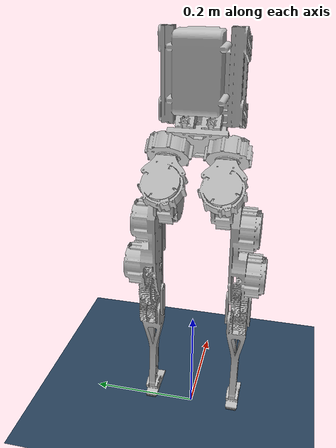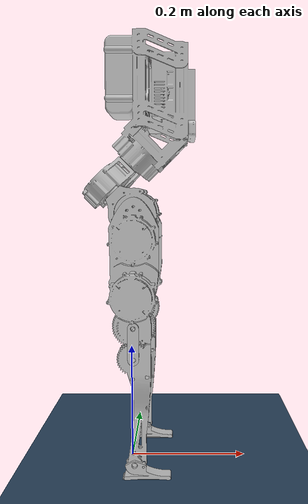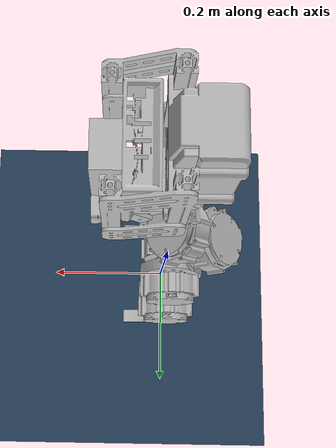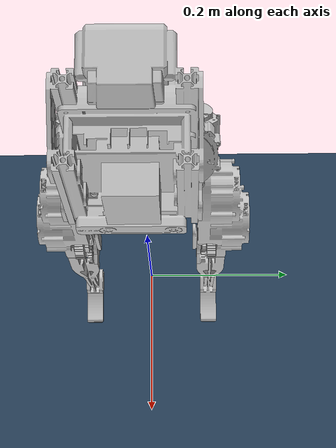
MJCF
<mujoco model="hector mini scene">
  <include file="hector_mini_biped_v2.xml"/>

  <statistic center="0 0 0.25" extent="1"/>

  <visual>
    <headlight diffuse="0.6 0.6 0.6" ambient="0.3 0.3 0.3" specular="0 0 0"/>
    <rgba haze="0.15 0.25 0.35 1"/>
    <global azimuth="-130" elevation="-20"/>
  </visual>

  <asset>
    <texture type="skybox" builtin="gradient" rgb1="0.3 0.5 0.7" rgb2="0 0 0" width="512" height="3072"/>
    <texture type="2d" name="groundplane" builtin="checker" mark="edge" rgb1="0.2 0.3 0.4" rgb2="0.1 0.2 0.3"
      markrgb="0.8 0.8 0.8" width="300" height="300"/>
    <material name="groundplane" texture="groundplane" texuniform="true" texrepeat="5 5" reflectance="0.2"/>
  </asset>

  <worldbody>
    <light pos="0 0 1.5" dir="0 0 -1" directional="true"/>
    <geom name="floor" size="0 0 0.05" type="plane" material="groundplane"/>
  </worldbody>
</mujoco>

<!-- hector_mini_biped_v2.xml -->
<mujoco model="hector_mini">
  <compiler angle="radian" meshdir="meshes/"/>

  <option timestep='0.001' o_solref='-100000 -1000' >
		<flag override='enable' />
	</option>

  <asset>
    <mesh name="body" file="body2.stl"/>
    <mesh name="left_hip1" file="hip_short_1.stl"/>
    <mesh name="right_hip1" file="hip_short_1.stl"/>
    <mesh name="left_hip2" file="hip_short_2_l.stl"/>
    <mesh name="right_hip2" file="hip_short_2_r.stl"/>
    <mesh name="left_thigh" file="thigh_l.stl"/>
    <mesh name="right_thigh" file="thigh_r.stl"/>
    <mesh name="left_bracket" file="bracket1.stl"/>
    <mesh name="right_bracket" file="bracket1.stl"/>
    <mesh name="left_calf" file="calf_l.stl"/>
    <mesh name="right_calf" file="calf_r.stl"/>
    <mesh name="left_foot" file="foot1.stl"/>
    <mesh name="right_foot" file="foot1.stl"/>
    <material name="metal_silver" rgba="0.75 0.75 0.75 1" specular="0.6" shininess="1"/>
  </asset>

  <default>
    <default class="torso_motor">
      <joint damping="0.01" armature="0.01" frictionloss="0.01"/>
    </default>
    <default class="leg_motor">
      <joint damping="0.01" armature="0.01" frictionloss="0.1"/>
    </default>
    <default class="ankle_motor">
      <joint damping="0.01" armature="0.01" frictionloss="0.1"/>
    </default>
    <default class="arm_motor">
      <joint damping="0.01" armature="0.01" frictionloss="0.1"/>
    </default>
    <default class="wrist_motor">
      <joint damping="0.01" armature="0.01" frictionloss="0.1"/>
    </default>
  </default>

  <worldbody>
    <body name="body" pos="0 0 0.64">
      <inertial pos="0.031602 0.0 -0.022894" quat="1 0 0 0" mass="1.8" diaginertia="0.008616 0.009058 0.005317"/>
      <joint name="floating_base_joint" type="free" limited="false" actuatorfrclimited="false"/>
      <geom type="mesh" contype="0" conaffinity="0" group="1" density="0" rgba="0.752941 0.752941 0.752941 1" mesh="body"/>
         <site name="imu" size="0.01" pos="-0.0 -0.0 0.0" />
      <body name="left_hip1" pos="0 0.05 -0.125" quat="0.9238795 0 0.3826834 0">
        <inertial pos="-0.0107 0 -0.0455" quat="1 0 0 0" mass="0.385" diaginertia="0.00023228 0.00017208 0.00012534"/>
        <joint name="left_hip_yaw_joint" pos="0 0 0" axis="0 0 1" damping="0.0" range="-1.57 1.57" actuatorfrcrange="-17 17" class="leg_motor"/>
        <geom type="mesh" contype="0" conaffinity="0" group="1" density="0" material="metal_silver" mesh="left_hip1"/>
        <body name="left_hip2" pos="0.0155 0 -0.04875" quat="1 0 0 0">
          <inertial pos="0.0455 -0.0107 0" quat="1 0 0 0" mass="0.385" diaginertia="0.00012534 0.00023228 0.00017208"/>
          <joint name="left_hip_roll_joint" pos="0 0 0" axis="1 0 0" damping="0.0" range="-1 1" actuatorfrcrange="-17 17" class="leg_motor"/>
          <geom type="mesh" contype="0" conaffinity="0" group="1" density="0" material="metal_silver" mesh="left_hip2"/>
          <body name="left_hip_pitch_joint" pos="0.04875 0.0155 0" quat="0.9238795 0 -0.3826834 0">
            <inertial pos="0.0001 0.03687 -0.09013" quat="1 0 0 0" mass="0.9856" diaginertia="0.003092 0.003075 0.00060"/>
            <joint name="left_hip_pitch_joint" pos="0 0 0" axis="0 1 0" damping="0.0" range="-1 2.57" actuatorfrcrange="-17 17" class="leg_motor"/>
            <geom type="mesh" contype="0" conaffinity="0" group="1" density="0" material="metal_silver" mesh="left_thigh"/>
            <body name="left_bracket_link" pos="0 0.0175 -0.18">
              <inertial pos="0 0 -0.0255" quat="1 0 0 0" mass="0.020" diaginertia="0.00000719 0.00000323 0.00000450"/>
              <joint name="left_knee_joint" pos="0 0 0" axis="0 1 0" damping="0.0" range="0.1 1.57" actuatorfrcrange="-17 17" class="leg_motor"/>
              <geom type="mesh" contype="0" conaffinity="0" group="1" density="0" material="metal_silver" mesh="left_bracket"/>
              <body name="left_calf_link" pos="0 0 -0.051">
                <inertial pos="0.005608 0.001267 -0.04554" quat="1 0 0 0" mass="0.1464" diaginertia="0.00047 0.000476 0.000035"/>
                <joint name="left_calf_joint" pos="0 0 0" axis="0 1 0" damping="0.0" range="0.1 1.57" actuatorfrcrange="-17 17" class="leg_motor"/>
                <geom type="mesh" contype="0" conaffinity="0" group="1" density="0" material="metal_silver" mesh="left_calf"/>
                <body name="left_ankle_link" pos="0 0 -0.18">
                  <inertial pos="0.0154 0 -0.0154" quat="1 0 0 0" mass="0.026" diaginertia="0.00000274 0.0000111 0.00001109"/>
                  <joint name="left_ankle_joint" pos="0 0 0" axis="0 1 0" damping="0.0" range="-2 2" actuatorfrcrange="-17 17" class="ankle_motor"/>
                  <geom type="mesh" material="metal_silver" mesh="left_foot"/>
                  <geom type="box" size="0.04 0.01 0.001" pos="0.02 0 -0.024" condim="4"
                  friction="2 0.005 0.0001" solref="-5e-4 -0.02" solimp="0.9 0.95 0.001 0.5 2"/>
                </body>
              </body>
            </body>
          </body>
        </body>
      </body>
      <body name="right_hip1" pos="0 -0.05 -0.125" quat="0.9238795 0 0.3826834 0">
        <inertial pos="-0.0107 0 -0.0455" quat="1 0 0 0" mass="0.385" diaginertia="0.00023228 0.00017208 0.00012534"/>
        <joint name="right_hip_yaw_joint" pos="0 0 0" axis="0 0 1" damping="0.0" range="-1.57 1.57" actuatorfrcrange="-17 17" class="leg_motor"/>
        <geom type="mesh" contype="0" conaffinity="0" group="1" density="0" material="metal_silver" mesh="right_hip1"/>
        <body name="right_hip2" pos="0.0155 0 -0.04875" quat="1 0 0 0">
          <inertial pos="0.0455 0.0107 0" quat="1 0 0 0" mass="0.385" diaginertia="0.00012534 0.00023228 0.00017208"/>
          <joint name="right_hip_roll_joint" pos="0 0 0" axis="1 0 0" damping="0.0" range="-1 1" actuatorfrcrange="-17 17" class="leg_motor"/>
          <geom type="mesh" contype="0" conaffinity="0" group="1" density="0" material="metal_silver" mesh="right_hip2"/>
          <body name="right_hip_pitch_joint" pos="0.04875 -0.0155 0" quat="0.9238795 0 -0.3826834 0">
            <inertial pos="0.0001 -0.03687 -0.09013" quat="1 0 0 0" mass="0.9856" diaginertia="0.003092 0.003075 0.00060"/>
            <joint name="right_hip_pitch_joint" pos="0 0 0" axis="0 1 0" damping="0.0" range="-1 2.57" actuatorfrcrange="-17 17" class="leg_motor"/>
            <geom type="mesh" contype="0" conaffinity="0" group="1" density="0" material="metal_silver" mesh="right_thigh"/>
            <body name="right_bracket_link" pos="0 -0.0175 -0.18">
              <inertial pos="0 0 -0.0255" quat="1 0 0 0" mass="0.020" diaginertia="0.00000719 0.00000323 0.00000450"/>
              <joint name="right_knee_joint" pos="0 0 0" axis="0 1 0" damping="0.0" range="0.1 1.57" actuatorfrcrange="-17 17" class="leg_motor"/>
              <geom type="mesh" contype="0" conaffinity="0" group="1" density="0" material="metal_silver" mesh="right_bracket"/>
              <body name="right_calf_link" pos="0 0 -0.051">
                <inertial pos="0.005608 -0.001267 -0.04554" quat="1 0 0 0" mass="0.1464" diaginertia="0.00047 0.000476 0.000035"/>
                <joint name="right_calf_joint" pos="0 0 0" axis="0 1 0" damping="0.0" range="0.1 1.57" actuatorfrcrange="-17 17" class="leg_motor"/>
                <geom type="mesh" contype="0" conaffinity="0" group="1" density="0" material="metal_silver" mesh="right_calf"/>
                <body name="right_ankle_link" pos="0 0 -0.18">
                  <inertial pos="0.0154 0 -0.0154" quat="1 0 0 0" mass="0.026" diaginertia="0.00000274 0.0000111 0.00001109"/>
                  <joint name="right_ankle_joint" pos="0 0 0" axis="0 1 0" damping="0.0" range="-2 2" actuatorfrcrange="-17 17" class="ankle_motor"/>
                  <geom type="mesh" material="metal_silver" mesh="right_foot"/>
                  <geom type="box" size="0.04 0.01 0.001" pos="0.02 0 -0.024" condim="4"
                  friction="2 0.005 0.0001" solref="-5e-4 -0.02" solimp="0.9 0.95 0.001 0.5 2"/>
                </body>
              </body>
            </body>
          </body>
        </body>
      </body>
    </body>
  </worldbody>

  <actuator>
    <motor name="left_hip_yaw" joint="left_hip_yaw_joint" ctrlrange="-17 17" />
    <motor name="left_hip_roll" joint="left_hip_roll_joint" ctrlrange="-17 17" />
    <motor name="left_hip_pitch" joint="left_hip_pitch_joint" ctrlrange="-17 17" />
    <motor name="left_knee" joint="left_knee_joint" ctrlrange="-17 17" />
    <motor name="left_calf" joint="left_calf_joint" ctrlrange="-17 17" />
    <motor name="left_ankle" joint="left_ankle_joint" ctrlrange="-17 17" />
    <motor name="right_hip_yaw" joint="right_hip_yaw_joint" ctrlrange="-17 17" />
    <motor name="right_hip_roll" joint="right_hip_roll_joint" ctrlrange="-17 17" />
    <motor name="right_hip_pitch" joint="right_hip_pitch_joint" ctrlrange="-17 17" />
    <motor name="right_knee" joint="right_knee_joint" ctrlrange="-17 17" />
    <motor name="right_calf" joint="right_calf_joint" ctrlrange="-17 17" />
    <motor name="right_ankle" joint="right_ankle_joint" ctrlrange="-17 17" />
  </actuator>

  <equality>
    <!-- constraint to weld the root to the world, fixed base -->
    <!-- constraint to couple the left hip pitch and left knee joints -->
    <joint name="left_pitch_knee" joint1="left_knee_joint" joint2="left_calf_joint" polycoef="0 1 0 0 0"/>
    <joint name="right_pitch_knee" joint1="right_knee_joint" joint2="right_calf_joint" polycoef="0 1 0 0 0"/>
  </equality>

  <sensor>
    <jointpos name="left_hip_yaw_pos" joint="left_hip_yaw_joint" />
    <jointpos name="left_hip_roll_pos" joint="left_hip_roll_joint" />
    <jointpos name="left_hip_pitch_pos" joint="left_hip_pitch_joint" />
    <jointpos name="left_knee_pos" joint="left_knee_joint" />
    <jointpos name="left_calf_pos" joint="left_calf_joint" />
    <jointpos name="left_ankle_pos" joint="left_ankle_joint" />
    <jointpos name="right_hip_yaw_pos" joint="right_hip_yaw_joint" />
    <jointpos name="right_hip_roll_pos" joint="right_hip_roll_joint" />
    <jointpos name="right_hip_pitch_pos" joint="right_hip_pitch_joint" />
    <jointpos name="right_knee_pos" joint="right_knee_joint" />
    <jointpos name="right_calf_pos" joint="right_calf_joint" />
    <jointpos name="right_ankle_pos" joint="right_ankle_joint" />

    <jointvel name="left_hip_yaw_vel" joint="left_hip_yaw_joint" />
    <jointvel name="left_hip_roll_vel" joint="left_hip_roll_joint" />
    <jointvel name="left_hip_pitch_vel" joint="left_hip_pitch_joint" />
    <jointvel name="left_knee_vel" joint="left_knee_joint" />
    <jointvel name="left_calf_vel" joint="left_calf_joint" />
    <jointvel name="left_ankle_vel" joint="left_ankle_joint" />
    <jointvel name="right_hip_yaw_vel" joint="right_hip_yaw_joint" />
    <jointvel name="right_hip_roll_vel" joint="right_hip_roll_joint" />
    <jointvel name="right_hip_pitch_vel" joint="right_hip_pitch_joint" />
    <jointvel name="right_knee_vel" joint="right_knee_joint" />
    <jointvel name="right_calf_vel" joint="right_calf_joint" />
    <jointvel name="right_ankle_vel" joint="right_ankle_joint" />

    <jointactuatorfrc name="left_hip_yaw_torque" joint="left_hip_yaw_joint" />
    <jointactuatorfrc name="left_hip_roll_torque" joint="left_hip_roll_joint" />
    <jointactuatorfrc name="left_hip_pitch_torque" joint="left_hip_pitch_joint" />
    <jointactuatorfrc name="left_knee_torque" joint="left_knee_joint" />
    <jointactuatorfrc name="left_calf_torque" joint="left_calf_joint" />
    <jointactuatorfrc name="left_ankle_torque" joint="left_ankle_joint" />
    <jointactuatorfrc name="right_hip_yaw_torque" joint="right_hip_yaw_joint" />
    <jointactuatorfrc name="right_hip_roll_torque" joint="right_hip_roll_joint" />
    <jointactuatorfrc name="right_hip_pitch_torque" joint="right_hip_pitch_joint" />
    <jointactuatorfrc name="right_knee_torque" joint="right_knee_joint" />
    <jointactuatorfrc name="right_calf_torque" joint="right_calf_joint" />
    <jointactuatorfrc name="right_ankle_torque" joint="right_ankle_joint" />

    <framequat name="imu_quat" objtype="site" objname="imu" />
    <gyro name="imu_gyro" site="imu" />
    <accelerometer name="imu_acc" site="imu" />

    <framepos name="frame_pos" objtype="site" objname="imu" />
    <framelinvel name="frame_vel" objtype="site" objname="imu" />
  </sensor>
</mujoco>
